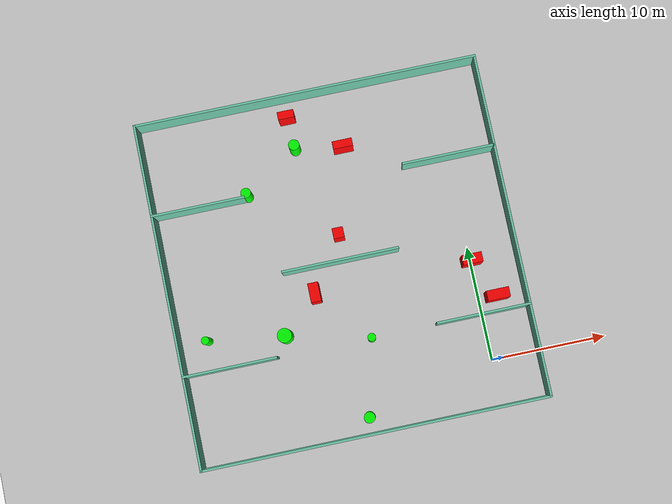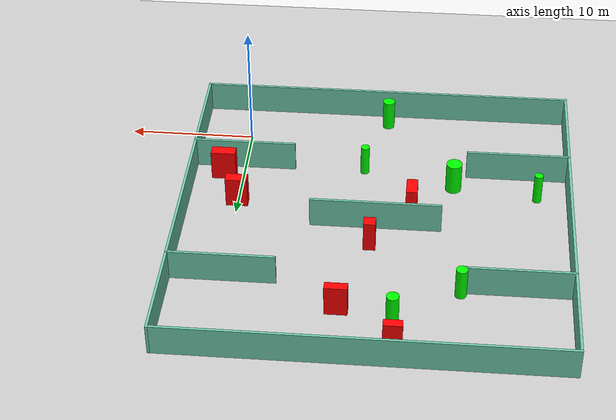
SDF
<sdf version="1.7">
 <world name="default">
  <light name="sun" type="directional">
   <pose>0 0 10 0 -0 0</pose>
   <diffuse>0.8 0.8 0.8 1</diffuse>
   <specular>0.2 0.2 0.2 1</specular>
   <attenuation>
    <range>1000</range>
    <constant>0.9</constant>
    <linear>0.01</linear>
    <quadratic>0.001</quadratic>
   </attenuation>
   <direction>-0.5 0.1 -0.9</direction>
   <spot><inner_angle>0</inner_angle><outer_angle>0</outer_angle><falloff>0</falloff></spot>
  </light>
  <model name="ground_plane">
   <static>1</static>
   <link name="link">
    <collision name="collision">
     <geometry><plane><normal>0 0 1</normal><size>100 100</size></plane></geometry>
     <surface>
      <contact><collide_bitmask>65535</collide_bitmask></contact>
      <friction><ode><mu>100</mu><mu2>50</mu2></ode></friction>
     </surface>
    </collision>
    <visual name="visual">
     <cast_shadows>0</cast_shadows>
     <geometry><plane><normal>0 0 1</normal><size>100 100</size></plane></geometry>
     <material>
      <script><uri>file://media/materials/scripts/gazebo.material</uri><name>Gazebo/Grey</name></script>
     </material>
    </visual>
   </link>
  </model>
  <gravity>0 0 -9.8</gravity>
  <magnetic_field>6e-06 2.3e-05 -4.2e-05</magnetic_field>
  <atmosphere type="adiabatic"/>
  <physics type="ode">
   <max_step_size>0.001</max_step_size>
   <real_time_factor>1</real_time_factor>
   <real_time_update_rate>1000</real_time_update_rate>
  </physics>
  <scene><ambient>0.4 0.4 0.4 1</ambient><background>0.7 0.7 0.7 1</background><shadows>1</shadows></scene>
  <spherical_coordinates>
   <surface_model>EARTH_WGS84</surface_model>
   <latitude_deg>0</latitude_deg>
   <longitude_deg>0</longitude_deg>
   <elevation>0</elevation>
   <heading_deg>0</heading_deg>
  </spherical_coordinates>
  <model name="my_base_walls">
   <link name="Wall_10">
    <collision name="Wall_10_Collision">
     <geometry><box><size>8.2 0.2 2.5</size></box></geometry>
     <pose>0 0 1.25 0 -0 0</pose>
    </collision>
    <visual name="Wall_10_Visual">
     <pose>0 0 1.25 0 -0 0</pose>
     <geometry><box><size>8.2 0.2 2.5</size></box></geometry>
     <material>
      <script><uri>file://media/materials/scripts/gazebo.material</uri><name>Gazebo/Grey</name></script>
      <ambient>0.435294 0.796078 0.67451 1</ambient>
     </material>
     <meta><layer>0</layer></meta>
    </visual>
    <pose>-11 -7 0 0 -0 0</pose>
   </link>
   <link name="Wall_12">
    <collision name="Wall_12_Collision">
     <geometry><box><size>8.2 0.2 2.5</size></box></geometry>
     <pose>0 0 1.25 0 -0 0</pose>
    </collision>
    <visual name="Wall_12_Visual">
     <pose>0 0 1.25 0 -0 0</pose>
     <geometry><box><size>8.2 0.2 2.5</size></box></geometry>
     <material>
      <script><uri>file://media/materials/scripts/gazebo.material</uri><name>Gazebo/Grey</name></script>
      <ambient>0.435294 0.796078 0.67451 1</ambient>
     </material>
     <meta><layer>0</layer></meta>
    </visual>
    <pose>-11 7 0 0 -0 0</pose>
   </link>
   <link name="Wall_14">
    <collision name="Wall_14_Collision">
     <geometry><box><size>8.2 0.2 2.5</size></box></geometry>
     <pose>0 0 1.25 0 -0 0</pose>
    </collision>
    <visual name="Wall_14_Visual">
     <pose>0 0 1.25 0 -0 0</pose>
     <geometry><box><size>8.2 0.2 2.5</size></box></geometry>
     <material>
      <script><uri>file://media/materials/scripts/gazebo.material</uri><name>Gazebo/Grey</name></script>
      <ambient>0.435294 0.796078 0.67451 1</ambient>
     </material>
     <meta><layer>0</layer></meta>
    </visual>
    <pose>11 7 0 0 -0 3.14159</pose>
   </link>
   <link name="Wall_16">
    <collision name="Wall_16_Collision">
     <geometry><box><size>10.2 0.2 2.5</size></box></geometry>
     <pose>0 0 1.25 0 -0 0</pose>
    </collision>
    <visual name="Wall_16_Visual">
     <pose>0 0 1.25 0 -0 0</pose>
     <geometry><box><size>10.2 0.2 2.5</size></box></geometry>
     <material>
      <script><uri>file://media/materials/scripts/gazebo.material</uri><name>Gazebo/Grey</name></script>
      <ambient>0.435294 0.796078 0.67451 1</ambient>
     </material>
     <meta><layer>0</layer></meta>
    </visual>
    <pose>0 0 0 0 -0 3.14159</pose>
   </link>
   <link name="Wall_2">
    <collision name="Wall_2_Collision">
     <geometry><box><size>30.2 0.2 2.5</size></box></geometry>
     <pose>0 0 1.25 0 -0 0</pose>
    </collision>
    <visual name="Wall_2_Visual">
     <pose>0 0 1.25 0 -0 0</pose>
     <geometry><box><size>30.2 0.2 2.5</size></box></geometry>
     <material>
      <script><uri>file://media/materials/scripts/gazebo.material</uri><name>Gazebo/Grey</name></script>
      <ambient>0.435294 0.796078 0.67451 1</ambient>
     </material>
     <meta><layer>0</layer></meta>
    </visual>
    <pose>0 -15 0 0 -0 3.14159</pose>
   </link>
   <link name="Wall_3">
    <collision name="Wall_3_Collision">
     <geometry><box><size>30.2 0.2 2.5</size></box></geometry>
     <pose>0 0 1.25 0 -0 0</pose>
    </collision>
    <visual name="Wall_3_Visual">
     <pose>0 0 1.25 0 -0 0</pose>
     <geometry><box><size>30.2 0.2 2.5</size></box></geometry>
     <material>
      <script><uri>file://media/materials/scripts/gazebo.material</uri><name>Gazebo/Grey</name></script>
      <ambient>0.435294 0.796078 0.67451 1</ambient>
     </material>
     <meta><layer>0</layer></meta>
    </visual>
    <pose>-15 0 0 0 -0 1.5708</pose>
   </link>
   <link name="Wall_4">
    <collision name="Wall_4_Collision">
     <geometry><box><size>30.2 0.2 2.5</size></box></geometry>
     <pose>0 0 1.25 0 -0 0</pose>
    </collision>
    <visual name="Wall_4_Visual">
     <pose>0 0 1.25 0 -0 0</pose>
     <geometry><box><size>30.2 0.2 2.5</size></box></geometry>
     <material>
      <script><uri>file://media/materials/scripts/gazebo.material</uri><name>Gazebo/Grey</name></script>
      <ambient>0.435294 0.796078 0.67451 1</ambient>
     </material>
     <meta><layer>0</layer></meta>
    </visual>
    <pose>0 15 0 0 -0 0</pose>
   </link>
   <link name="Wall_6">
    <collision name="Wall_6_Collision">
     <geometry><box><size>30.2 0.2 2.5</size></box></geometry>
     <pose>0 0 1.25 0 -0 0</pose>
    </collision>
    <visual name="Wall_6_Visual">
     <pose>0 0 1.25 0 -0 0</pose>
     <geometry><box><size>30.2 0.2 2.5</size></box></geometry>
     <material>
      <script><uri>file://media/materials/scripts/gazebo.material</uri><name>Gazebo/Grey</name></script>
      <ambient>0.435294 0.796078 0.67451 1</ambient>
     </material>
     <meta><layer>0</layer></meta>
    </visual>
    <pose>15 0 0 0 -0 1.5708</pose>
   </link>
   <link name="Wall_8">
    <collision name="Wall_8_Collision">
     <geometry><box><size>8.2 0.2 2.5</size></box></geometry>
     <pose>0 0 1.25 0 -0 0</pose>
    </collision>
    <visual name="Wall_8_Visual">
     <pose>0 0 1.25 0 -0 0</pose>
     <geometry><box><size>8.2 0.2 2.5</size></box></geometry>
     <material>
      <script><uri>file://media/materials/scripts/gazebo.material</uri><name>Gazebo/Grey</name></script>
      <ambient>0.435294 0.796078 0.67451 1</ambient>
     </material>
     <meta><layer>0</layer></meta>
    </visual>
    <pose>11 -7 0 0 -0 3.14159</pose>
   </link>
   <static>1</static>
   <pose>-11 11 0 0 -0 0</pose>
  </model>
  <model name="cylinder1">
   <static>1</static>
   <link name="link">
    <inertial>
     <mass>1</mass>
     <inertia><ixx>0.5</ixx><ixy>0</ixy><ixz>0</ixz><iyy>0.5</iyy><iyz>0</iyz><izz>1</izz></inertia>
    </inertial>
    <collision name="collision">
     <geometry><cylinder><radius>0.4815991560232332</radius><length>2.5</length></cylinder></geometry>
    </collision>
    <visual name="visual">
     <geometry><cylinder><radius>0.4815991560232332</radius><length>2.5</length></cylinder></geometry>
     <material>
      <ambient>0 1 0 1</ambient>
      <diffuse>0 1 0 1</diffuse>
      <specular>0.1 0.1 0.1 1</specular>
      <emissive>0 0 0 0</emissive>
     </material>
    </visual>
   </link>
   <pose>-11.307580456385306 -2.56499041280694 1.25 0 0 0</pose>
  </model>
  <model name="cylinder2">
   <static>1</static>
   <link name="link">
    <inertial>
     <mass>1</mass>
     <inertia><ixx>0.5</ixx><ixy>0</ixy><ixz>0</ixz><iyy>0.5</iyy><iyz>0</iyz><izz>1</izz></inertia>
    </inertial>
    <collision name="collision">
     <geometry><cylinder><radius>0.4388107479294674</radius><length>2.5</length></cylinder></geometry>
    </collision>
    <visual name="visual">
     <geometry><cylinder><radius>0.4388107479294674</radius><length>2.5</length></cylinder></geometry>
     <material>
      <ambient>0 1 0 1</ambient>
      <diffuse>0 1 0 1</diffuse>
      <specular>0.1 0.1 0.1 1</specular>
      <emissive>0 0 0 0</emissive>
     </material>
    </visual>
   </link>
   <pose>-17.73964937046135 18.28404834029325 1.25 0 0 0</pose>
  </model>
  <model name="cylinder3">
   <static>1</static>
   <link name="link">
    <inertial>
     <mass>1</mass>
     <inertia><ixx>0.5</ixx><ixy>0</ixy><ixz>0</ixz><iyy>0.5</iyy><iyz>0</iyz><izz>1</izz></inertia>
    </inertial>
    <collision name="collision">
     <geometry><cylinder><radius>0.4744416576443309</radius><length>2.5</length></cylinder></geometry>
    </collision>
    <visual name="visual">
     <geometry><cylinder><radius>0.4744416576443309</radius><length>2.5</length></cylinder></geometry>
     <material>
      <ambient>0 1 0 1</ambient>
      <diffuse>0 1 0 1</diffuse>
      <specular>0.1 0.1 0.1 1</specular>
      <emissive>0 0 0 0</emissive>
     </material>
    </visual>
   </link>
   <pose>-12.873763504567728 21.53945543066096 1.25 0 0 0</pose>
  </model>
  <model name="cylinder4">
   <static>1</static>
   <link name="link">
    <inertial>
     <mass>1</mass>
     <inertia><ixx>0.5</ixx><ixy>0</ixy><ixz>0</ixz><iyy>0.5</iyy><iyz>0</iyz><izz>1</izz></inertia>
    </inertial>
    <collision name="collision">
     <geometry><cylinder><radius>0.6248874909573758</radius><length>2.5</length></cylinder></geometry>
    </collision>
    <visual name="visual">
     <geometry><cylinder><radius>0.6248874909573758</radius><length>2.5</length></cylinder></geometry>
     <material>
      <ambient>0 1 0 1</ambient>
      <diffuse>0 1 0 1</diffuse>
      <specular>0.1 0.1 0.1 1</specular>
      <emissive>0 0 0 0</emissive>
     </material>
    </visual>
   </link>
   <pose>-16.92360756342242 5.661385646456186 1.25 0 0 0</pose>
  </model>
  <model name="cylinder5">
   <static>1</static>
   <link name="link">
    <inertial>
     <mass>1</mass>
     <inertia><ixx>0.5</ixx><ixy>0</ixy><ixz>0</ixz><iyy>0.5</iyy><iyz>0</iyz><izz>1</izz></inertia>
    </inertial>
    <collision name="collision">
     <geometry><cylinder><radius>0.34168194066843616</radius><length>2.5</length></cylinder></geometry>
    </collision>
    <visual name="visual">
     <geometry><cylinder><radius>0.34168194066843616</radius><length>2.5</length></cylinder></geometry>
     <material>
      <ambient>0 1 0 1</ambient>
      <diffuse>0 1 0 1</diffuse>
      <specular>0.1 0.1 0.1 1</specular>
      <emissive>0 0 0 0</emissive>
     </material>
    </visual>
   </link>
   <pose>-23.55871591238066 6.641252247317837 1.25 0 0 0</pose>
  </model>
  <model name="cylinder6">
   <static>1</static>
   <link name="link">
    <inertial>
     <mass>1</mass>
     <inertia><ixx>0.5</ixx><ixy>0</ixy><ixz>0</ixz><iyy>0.5</iyy><iyz>0</iyz><izz>1</izz></inertia>
    </inertial>
    <collision name="collision">
     <geometry><cylinder><radius>0.344538659408459</radius><length>2.5</length></cylinder></geometry>
    </collision>
    <visual name="visual">
     <geometry><cylinder><radius>0.344538659408459</radius><length>2.5</length></cylinder></geometry>
     <material>
      <ambient>0 1 0 1</ambient>
      <diffuse>0 1 0 1</diffuse>
      <specular>0.1 0.1 0.1 1</specular>
      <emissive>0 0 0 0</emissive>
     </material>
    </visual>
   </link>
   <pose>-9.738935942006707 3.986239180126704 1.25 0 0 0</pose>
  </model>
  <model name="box1">
   <static>1</static>
   <link name="link">
    <inertial>
     <mass>1</mass>
     <inertia><ixx>0.083</ixx><ixy>0</ixy><ixz>0</ixz><iyy>0.083</iyy><iyz>0</iyz><izz>0.083</izz></inertia>
    </inertial>
    <collision name="collision">
     <geometry><box><size>1.7234444799247053 0.8614842416658333 2.5</size></box></geometry>
    </collision>
    <visual name="visual">
     <geometry><box><size>1.7234444799247053 0.8614842416658333 2.5</size></box></geometry>
     <material>
      <ambient>1 0 0 1</ambient>
      <diffuse>1 0 0 1</diffuse>
      <specular>0.1 0.1 0.1 1</specular>
      <emissive>0 0 0 0</emissive>
     </material>
    </visual>
    <sensor name="my_contact" type="contact">
     <contact><collision>box_collision</collision><topic>__default_topic__</topic></contact>
    </sensor>
   </link>
   <pose>0.03713904546135538 8.7587571833534 1.25 0 0 0</pose>
  </model>
  <model name="box2">
   <static>1</static>
   <link name="link">
    <inertial>
     <mass>1</mass>
     <inertia><ixx>0.083</ixx><ixy>0</ixy><ixz>0</ixz><iyy>0.083</iyy><iyz>0</iyz><izz>0.083</izz></inertia>
    </inertial>
    <collision name="collision">
     <geometry><box><size>1.953369737918093 0.8860387302017925 2.5</size></box></geometry>
    </collision>
    <visual name="visual">
     <geometry><box><size>1.953369737918093 0.8860387302017925 2.5</size></box></geometry>
     <material>
      <ambient>1 0 0 1</ambient>
      <diffuse>1 0 0 1</diffuse>
      <specular>0.1 0.1 0.1 1</specular>
      <emissive>0 0 0 0</emissive>
     </material>
    </visual>
    <sensor name="my_contact" type="contact">
     <contact><collision>box_collision</collision><topic>__default_topic__</topic></contact>
    </sensor>
   </link>
   <pose>1.536108671506657 5.351668203660012 1.25 0 0 0</pose>
  </model>
  <model name="box3">
   <static>1</static>
   <link name="link">
    <inertial>
     <mass>1</mass>
     <inertia><ixx>0.083</ixx><ixy>0</ixy><ixz>0</ixz><iyy>0.083</iyy><iyz>0</iyz><izz>0.083</izz></inertia>
    </inertial>
    <collision name="collision">
     <geometry><box><size>0.9296583221814871 0.9109542878134133 2.5</size></box></geometry>
    </collision>
    <visual name="visual">
     <geometry><box><size>0.9296583221814871 0.9109542878134133 2.5</size></box></geometry>
     <material>
      <ambient>1 0 0 1</ambient>
      <diffuse>1 0 0 1</diffuse>
      <specular>0.1 0.1 0.1 1</specular>
      <emissive>0 0 0 0</emissive>
     </material>
    </visual>
    <sensor name="my_contact" type="contact">
     <contact><collision>box_collision</collision><topic>__default_topic__</topic></contact>
    </sensor>
   </link>
   <pose>-10.697168047434015 13.29863207397107 1.25 0 0 0</pose>
  </model>
  <model name="box4">
   <static>1</static>
   <link name="link">
    <inertial>
     <mass>1</mass>
     <inertia><ixx>0.083</ixx><ixy>0</ixy><ixz>0</ixz><iyy>0.083</iyy><iyz>0</iyz><izz>0.083</izz></inertia>
    </inertial>
    <collision name="collision">
     <geometry><box><size>0.882502407292276 1.6600052286411469 2.5</size></box></geometry>
    </collision>
    <visual name="visual">
     <geometry><box><size>0.882502407292276 1.6600052286411469 2.5</size></box></geometry>
     <material>
      <ambient>1 0 0 1</ambient>
      <diffuse>1 0 0 1</diffuse>
      <specular>0.1 0.1 0.1 1</specular>
      <emissive>0 0 0 0</emissive>
     </material>
    </visual>
    <sensor name="my_contact" type="contact">
     <contact><collision>box_collision</collision><topic>__default_topic__</topic></contact>
    </sensor>
   </link>
   <pose>-13.711217791310768 8.732039432301406 1.25 0 0 0</pose>
  </model>
  <model name="box5">
   <static>1</static>
   <link name="link">
    <inertial>
     <mass>1</mass>
     <inertia><ixx>0.083</ixx><ixy>0</ixy><ixz>0</ixz><iyy>0.083</iyy><iyz>0</iyz><izz>0.083</izz></inertia>
    </inertial>
    <collision name="collision">
     <geometry><box><size>1.4099499795998143 0.6762222611650864 2.5</size></box></geometry>
    </collision>
    <visual name="visual">
     <geometry><box><size>1.4099499795998143 0.6762222611650864 2.5</size></box></geometry>
     <material>
      <ambient>1 0 0 1</ambient>
      <diffuse>1 0 0 1</diffuse>
      <specular>0.1 0.1 0.1 1</specular>
      <emissive>0 0 0 0</emissive>
     </material>
    </visual>
    <sensor name="my_contact" type="contact">
     <contact><collision>box_collision</collision><topic>__default_topic__</topic></contact>
    </sensor>
   </link>
   <pose>-13.03233797238671 24.29047248960341 1.25 0 0 0</pose>
  </model>
  <model name="box6">
   <static>1</static>
   <link name="link">
    <inertial>
     <mass>1</mass>
     <inertia><ixx>0.083</ixx><ixy>0</ixy><ixz>0</ixz><iyy>0.083</iyy><iyz>0</iyz><izz>0.083</izz></inertia>
    </inertial>
    <collision name="collision">
     <geometry><box><size>1.7186271891645721 0.6823242737890697 2.5</size></box></geometry>
    </collision>
    <visual name="visual">
     <geometry><box><size>1.7186271891645721 0.6823242737890697 2.5</size></box></geometry>
     <material>
      <ambient>1 0 0 1</ambient>
      <diffuse>1 0 0 1</diffuse>
      <specular>0.1 0.1 0.1 1</specular>
      <emissive>0 0 0 0</emissive>
     </material>
    </visual>
    <sensor name="my_contact" type="contact">
     <contact><collision>box_collision</collision><topic>__default_topic__</topic></contact>
    </sensor>
   </link>
   <pose>-8.75794200689799 20.79231346096424 1.25 0 0 0</pose>
  </model>
 </world>
</sdf>
